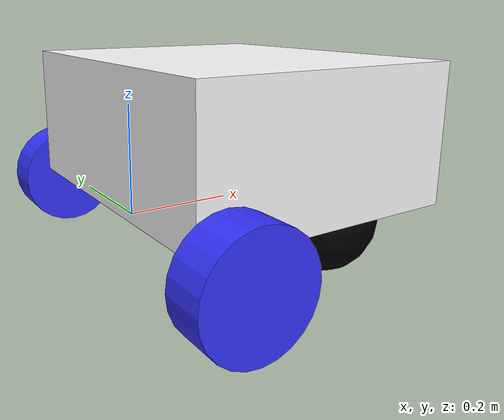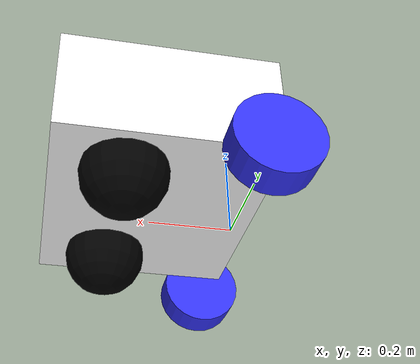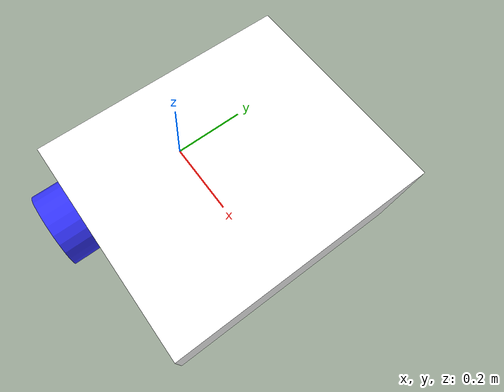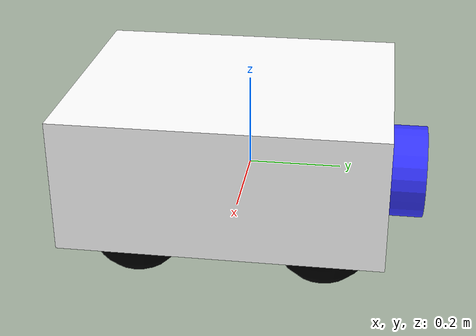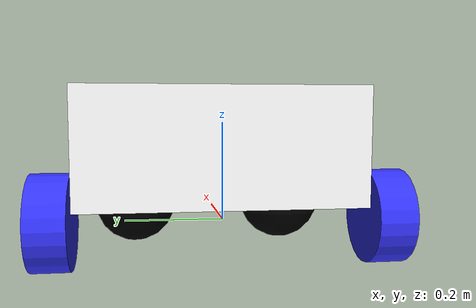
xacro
<?xml version="1.0"?>
<robot xmlns:xacro="http://www.ros.org/wiki/xacro"  >

    <xacro:include filename="inertial_macros.xacro"/>

    <material name="white">
        <color rgba="1 1 1 1"/>
    </material>

    <material name="orange">
         <color rgba="1 0.3 0.1 1"/>
    </material>

    <material name="blue">
        <color rgba="0.2 0.2 1 1"/>
    </material>

    <material name="black">
        <color rgba="0 0 0 1"/>
    </material>

    <!--BASE LINK -->

    <link name="base_link">

    </link>

    <!-- BASE_FOOTPRINT LINK -->

    <joint name="base_footprint_joint" type="fixed">
        <parent link="base_link"/>
        <child link="base_footprint"/>
        <origin xyz="0 0 0" rpy="0 0 0"/>
    </joint>

    <link name="base_footprint">
    </link>

    <!-- CHASSIS LINK -->

    <joint name="chassis_joint" type="fixed">
        <parent link="base_link"/>
        <child link="chassis"/>
        <origin xyz="-0.1 0 0"/>
    </joint>

    <!-- CHASSIS LINK -->

    <link name="chassis">
        <visual>
            <origin xyz="0.3 0 0.15" rpy="0 0 0"/>
            <geometry>
                <box size="0.5 0.604 0.252"/>
            </geometry>
            <material name="white"/>
        </visual>
        <collision>
            <origin xyz="0.3 0 0.15" rpy="0 0 0"/>
            <geometry>
                <box size="0.5 0.604 0.252"/>
            </geometry>
            <material name="white"/>
        </collision>

    </link>

    <gazebo reference="chassis">
    	<material>Gazebo/White</material>
    </gazebo>

    <!--LEFT WHEEL LINK -->

    <joint name="left_wheel_joint" type="continuous">
        <parent link="base_link"/>
        <child link="left_wheel"/>
        <origin xyz="0 0.345 0" rpy="-${pi/2} 0 0"/>
        <axis xyz="0 0 1"/>
    </joint>

    <link name="left_wheel">
        <visual>
            <geometry>
                <cylinder length="0.08" radius="0.1" />
            </geometry>
            <material name="blue"/>
        </visual>
        <collision>
            <geometry>
                <cylinder length="0.08" radius="0.1" />
            </geometry>
            <material name="blue"/>
        </collision>
        <xacro:inertial_cylinder mass="0.1" length="0.08" radius ="0.1">
            <origin xyz="0 0 0" rpy="0 0 0"/>
        </xacro:inertial_cylinder>
    </link>

    <gazebo reference="left_wheel">
    	<material>Gazebo/Blue</material>
    </gazebo>

    <!-- RIGHT WHEEL -->

    <joint name="right_wheel_joint" type="continuous">
        <parent link="base_link"/>
        <child link="right_wheel"/>
        <origin xyz="0 -0.345 0" rpy="${pi/2} 0 0"/>
        <axis xyz="0 0 -1"/>
    </joint>

    <link name="right_wheel">
        <visual>
            <geometry>
                <cylinder length="0.08" radius="0.1" />
            </geometry>
            <material name="blue"/>
        </visual>
        <collision>
            <geometry>
                <cylinder length="0.08" radius="0.1" />
            </geometry>
            <material name="blue"/>
        </collision>
        <xacro:inertial_cylinder mass="0.1" length="0.08" radius ="0.1">
            <origin xyz="0 0 0" rpy="0 0 0"/>
        </xacro:inertial_cylinder>
    </link>

    <gazebo reference="right_wheel">
    	<material>Gazebo/Blue</material>
    </gazebo>

    <!-- CASTER WHEEL -->

    <joint name="caster_wheel_left_joint" type="fixed">
        <parent link="chassis"/>
        <child link="caster_left_wheel"/>
        <origin xyz="0.385 0.184 0" rpy="0 0 0"/>
    </joint>

    <link name="caster_left_wheel">
        <visual>
            <geometry>
                <sphere radius="0.1" />
            </geometry>
            <material name="black"/>
        </visual>
        <collision>
            <geometry>
                <sphere radius="0.1" />
            </geometry>
            <material name="black"/>
        </collision>
        <xacro:inertial_sphere mass="0.1" radius ="0.1">
            <origin xyz="0 0 0" rpy="0 0 0"/>
        </xacro:inertial_sphere>
    </link>

    <joint name="caster_wheel_right_joint" type="fixed">
        <parent link="chassis"/>
        <child link="caster_right_wheel"/>
        <origin xyz="0.385 -0.184 0" rpy="0 0 0"/>
    </joint>

    <gazebo reference="caster_left_wheel">
    	<material>Gazebo/Black</material>
    	<mu1 value="0.002"/>
    	<mu2 value="0.002"/>
    </gazebo>

    <link name="caster_right_wheel">
        <visual>
            <geometry>
                <sphere radius="0.1" />
            </geometry>
            <material name="black"/>
        </visual>
        <collision>
            <geometry>
                <sphere radius="0.1" />
            </geometry>
            <material name="black"/>
        </collision>
        <xacro:inertial_sphere mass="0.1" radius ="0.1">
            <origin xyz="0 0 0" rpy="0 0 0"/>
        </xacro:inertial_sphere>
    </link>

    <gazebo reference="caster_right_wheel">
    	<material>Gazebo/Black</material>
    	<mu1 value="0.002"/>
    	<mu2 value="0.002"/>
    </gazebo>

</robot>
